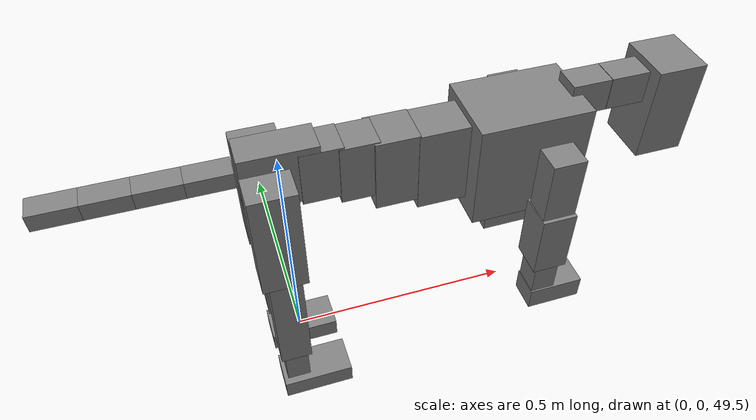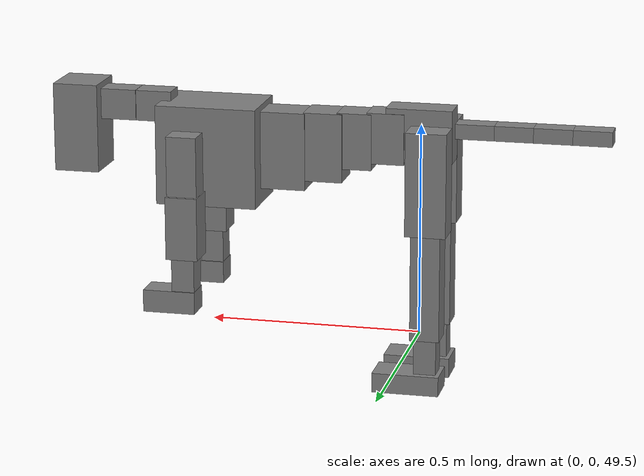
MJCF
<mujoco model="dog">

    <default>
        <joint armature="0.02" stiffness="1" damping="0.2" limited="true"/>
        <geom condim="3" friction="1 0.05 0.05" margin="0.01"/>
        <motor ctrllimited="true" ctrlrange="-1.0 1.0" forcelimited="true" gear="50"/>
    </default>

    <compiler inertiafromgeom="true" angle="radian"/>

    <option timestep="0.016" iterations="50" tolerance="1e-10" solver="Newton" jacobian="dense" cone="pyramidal"/>

    <size nconmax="20000" njmax="60000" nstack="5000000"/>
    <visual>
        <map force="0.1" zfar="30"/>
        <rgba haze="0.15 0.25 0.35 1"/>
        <quality shadowsize="2048"/>
        <global offwidth="800" offheight="800"/>
    </visual>

    <asset>
        <texture type="skybox" builtin="gradient" rgb1="0.3 0.5 0.7" rgb2="0 0 0" width="512" height="512"/>
        <texture name="texplane" type="2d" builtin="checker" rgb1=".2 .3 .4" rgb2=".1 0.15 0.2" width="512" height="512"
                 mark="cross" markrgb=".8 .8 .8"/>
        <texture name="texgeom" type="cube" builtin="flat" mark="cross" width="127" height="1278" rgb1="0.8 0.6 0.4"
                 rgb2="0.8 0.6 0.4" markrgb="1 1 1" random="0.01"/>

        <material name="matplane" reflectance="0.3" texture="texplane" texrepeat="1 1" texuniform="true"/>
        <material name="matgeom" texture="texgeom" texuniform="true" rgba="0.8 0.6 .4 1"/>
    </asset>

    <worldbody>
        <geom name="floor" pos="0 0 0" size="0 0 .25" type="plane" material="matplane" condim="3"/>

        <light directional="false" diffuse=".2 .2 .2" specular="0 0 0" pos="0 0 5" dir="0 0 -1" castshadow="false"/>
        <light mode="targetbodycom" target="torso" directional="false" diffuse=".8 .8 .8" specular="0.3 0.3 0.3"
               pos="0 0 4.0" dir="0 0 -1"/>

        <body name="root" pos="0 0 50">
            <freejoint name="root_1"/>
            <geom type="box" pos="0 0 -0.02" size="0.0774  0.0358  0.063" density="2030"/>

            <body name="spine1" pos="0.054 0 0">
                <joint name="spine1_y" axis="0 1 0" range="0 0.7" limited="true"/>
                <geom type="box" pos="0.02375 0 -0.03" size="0.04375  0.0375  0.05985" density="2030"/>

                <body name="spine2" pos="0.0612 0 0">
                    <joint name="spine2_y" axis="0 1 0" range="-0.15 0.15" limited="true"/>
                    <geom type="box" pos="0.03555  0  -0.04" size="0.04055  0.039  0.06615" density="2030"/>

                    <body name="spine3" pos="0.0730 0 0">
                        <joint name="spine3_y" axis="0 1 0" range="-0.15 0.15" limited="true"/>
                        <geom type="box" pos="0.03555  0  -0.057" size="0.04555  0.0445  0.081" density="2030"/>

                        <body name="spine4" pos="0.0780 0 0">
                            <joint name="spine4_y" axis="0 1 0" range="-0.15 0.15" limited="true"/>
                            <geom type="box" pos="0.05265  0  -0.07" size="0.05265  0.045  0.09135" density="2030"/>

                            <body name="torso" pos="0.1082 0 0">
                                <joint name="torso_y" axis="0 1 0" range="-0.15 0.15" limited="true"/>
                                <geom type="box" pos="0.11925  0  -0.085" size="0.11925  0.085  0.11745"
                                      density="2030"/>

                                <body name="neck1" pos="0.2160  0   0.0180">
                                    <joint name="neck1_y" axis="0 1 0" range="-1.2  -1" limited="true"/>
                                    <geom type="box" pos="0.0423  0  0" size="0.0423  0.03  0.036" density="2325"/>

                                    <body name="neck2" pos="0.0853  0  0">
                                        <joint name="neck2_y" axis="0 1 0" range="0.1  0" limited="true"/>
                                        <geom type="box" pos="0.0423  0  0" size="0.0423  0.03  0.036" density="2325"/>

                                        <body name="head" pos="0.0853  0  0">
                                            <joint name="head_y" axis="0 1 0" range="-0.3  -0.2" limited="true"/>
                                            <geom type="box" pos="0.0531  0  -0.055" size="0.0531  0.06  0.1044"
                                                  density="4030"/>

                                        </body>
                                    </body>
                                </body>

                                <body name="front_shoulder" pos="0.156  0   -0.0480">
                                    <joint name="front_shoulder_y" axis="0 1 0" range="-1 1.5" limited="true"/>
                                    <geom type="box" pos="0 0.13 -0.0575" size="0.0354  0.0303  0.0841" density="1158"/>
                                    <geom type="box" pos="0 -0.13 -0.0575" size="0.0354  0.0303  0.0841"
                                          density="1158"/>

                                    <body name="front_elbow" pos="0  0  -0.1150">
                                        <joint name="front_elbow_y" axis="0 1 0" range="-2 0" limited="true"/>
                                        <geom type="box" pos="0 0.13 -0.0744" size="0.0375  0.0383  0.0744"
                                              density="1081"/>
                                        <geom type="box" pos="0 -0.13 -0.0744" size="0.0375  0.0383  0.0744"
                                              density="1081"/>

                                        <body name="front_wrist" pos="0  0  -0.1489">
                                            <joint name="front_wrist_y" axis="0 1 0" range="-0.2 0" limited="true"/>
                                            <geom type="box" pos="0 0.13 -0.0466" size="0.0268  0.0298  0.0598"
                                                  density="1664"/>
                                            <geom type="box" pos="0 -0.13 -0.0466" size="0.0268  0.0298  0.0598"
                                                  density="1664"/>

                                            <body name="front_finger_end" pos="0  0  -0.0932">
                                                <joint name="front_finger_y" axis="0 1 0" range="-0.4 1"
                                                       limited="true"/>
                                                <geom type="box" pos="0.0336  0.13  -0.0113"
                                                      size="0.0616  0.0336  0.0263" density="1515"/>
                                                <geom type="box" pos="0.0336  -0.13  -0.0113"
                                                      size="0.0616  0.0336  0.0263" density="1515"/>

                                            </body>

                                        </body>
                                    </body>
                                </body>

                            </body>
                        </body>
                    </body>
                </body>
            </body>

            <body name="back_hip" pos="-0.03 0 -0.018">
                <joint name="back_hip_y" axis="0 1 0" range="-1.5 0.3" limited="true"/>
                <geom type="box" pos="0 0.07 -0.0993" size="0.0475  0.0373  0.1221" density="1154"/>
                <geom type="box" pos="0 -0.07 -0.0993" size="0.0475  0.0373  0.1221" density="1154"/>

                <body name="back_knee" pos="0  0  -0.1986">
                    <joint name="back_knee_y" axis="0 1 0" range="0 2.8" limited="true"/>
                    <geom type="box" pos="0 0.07 -0.1285" size="0.0344  0.0339  0.1441" density="1227"/>
                    <geom type="box" pos="0 -0.07 -0.1285" size="0.0344  0.0339  0.1441" density="1227"/>

                    <body name="back_ankle" pos="0  0  -0.2571">
                        <joint name="back_ankle_y" axis="0 1 0" range="-2.2 0" limited="true"/>
                        <geom type="box" pos="0 0.07 -0.0566" size="0.0262  0.0262  0.0679" density="1284"/>
                        <geom type="box" pos="0 -0.07 -0.0566" size="0.0262  0.0262  0.0679" density="1284"/>

                        <body name="back_toe_end" pos="0  0  -0.1133">
                            <joint name="back_toe_y" axis="0 1 0" range="-0.4 1" limited="true"/>
                            <geom type="box" pos="0.0428  0.07  -0.0081" size="0.0785  0.0428  0.0231" density="1515"/>
                            <geom type="box" pos="0.0428  -0.07  -0.0081" size="0.0785  0.0428  0.0231" density="1515"/>

                        </body>
                    </body>
                </body>
            </body>

            <body name="tail1" pos="-0.074 0 -0.006">
                <joint name="tail1_y" axis="0 1 0" range="-0.2 0.2" limited="true"/>
                <geom type="box" pos="-0.0536  0  0" size="0.045  0.025  0.0175" density="1587"/>

                <body name="tail2" pos="-0.09 0 0">
                    <joint name="tail2_y" axis="0 1 0" range="-0.2 0.2" limited="true"/>
                    <geom type="box" pos="-0.0536  0  0" size="0.045  0.025  0.0175" density="1587"/>

                    <body name="tail3" pos="-0.09 0 0">
                        <joint name="tail3_y" axis="0 1 0" range="-0.2 0.2" limited="true"/>
                        <geom type="box" pos="-0.0536  0  0" size="0.045  0.025  0.0175" density="1587"/>

                        <body name="tail4" pos="-0.09 0 0">
                            <joint name="tail4_y" axis="0 1 0" range="-0.2 0.2" limited="true"/>
                            <geom type="box" pos="-0.0536  0  0" size="0.045  0.025  0.0175" density="1587"/>

                        </body>
                    </body>
                </body>
            </body>
        </body>
    </worldbody>

    <actuator>
        <motor joint="spine1_y" forcerange="-150 150     "/>
        <motor joint="spine2_y" forcerange="-150 150     "/>
        <motor joint="spine3_y" forcerange="-150 150     "/>
        <motor joint="spine4_y" forcerange="-150 150     "/>
        <motor joint="torso_y" forcerange="-150 150     "/>
        <motor joint="neck1_y" forcerange="-100 100       "/>
        <motor joint="neck2_y" forcerange="-100 100       "/>
        <motor joint="head_y" forcerange="-150 150       "/>
        <motor joint="front_shoulder_y" forcerange="-118.12 183.87"/>
        <motor joint="front_elbow_y" forcerange="-191.75 186.91"/>
        <motor joint="front_wrist_y" forcerange="-122.67 115.73"/>
        <motor joint="front_finger_y" forcerange="-49.49 89.63"/>
        <motor joint="back_hip_y" forcerange="-339.57 357.38"/>
        <motor joint="back_knee_y" forcerange="-362.18 331.34"/>
        <motor joint="back_angle_y" forcerange="-236.77 83.01"/>
        <motor joint="back_toe_y" forcerange="-124.67 137.98"/>
        <motor joint="tail1_y" forcerange="-50 50     "/>
        <motor joint="tail2_y" forcerange="-50 50     "/>
        <motor joint="tail3_y" forcerange="-50 50     "/>
        <motor joint="tail4_y" forcerange="-50 50     "/>
    </actuator>
</mujoco>
